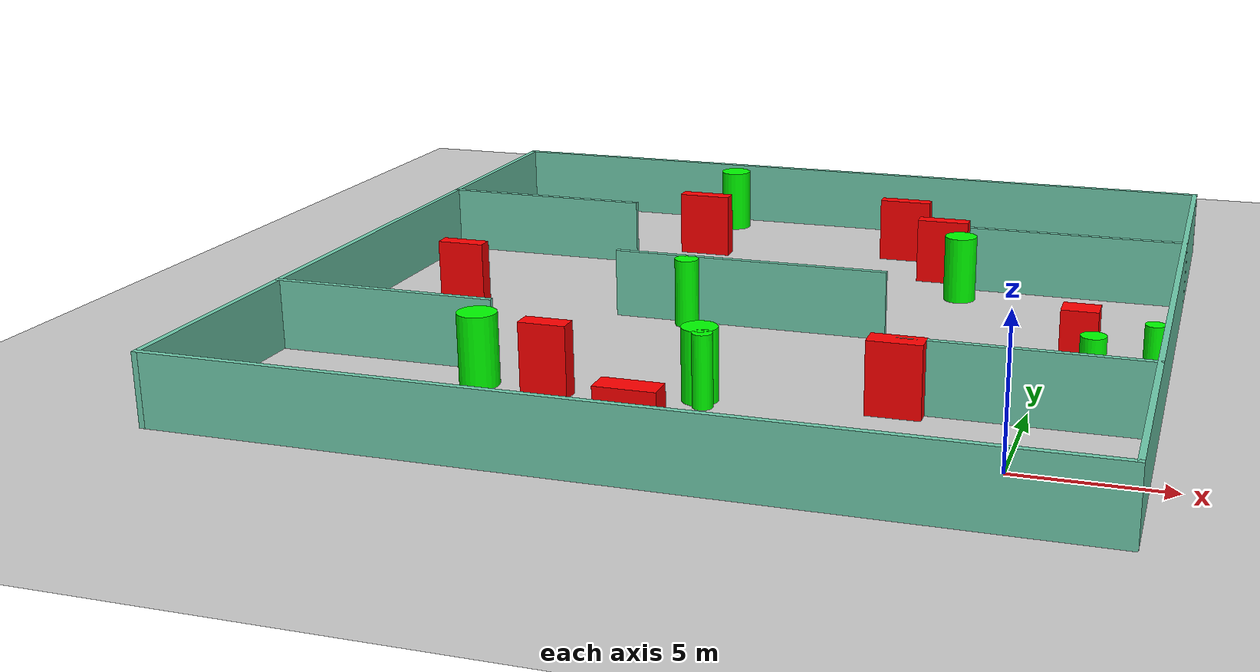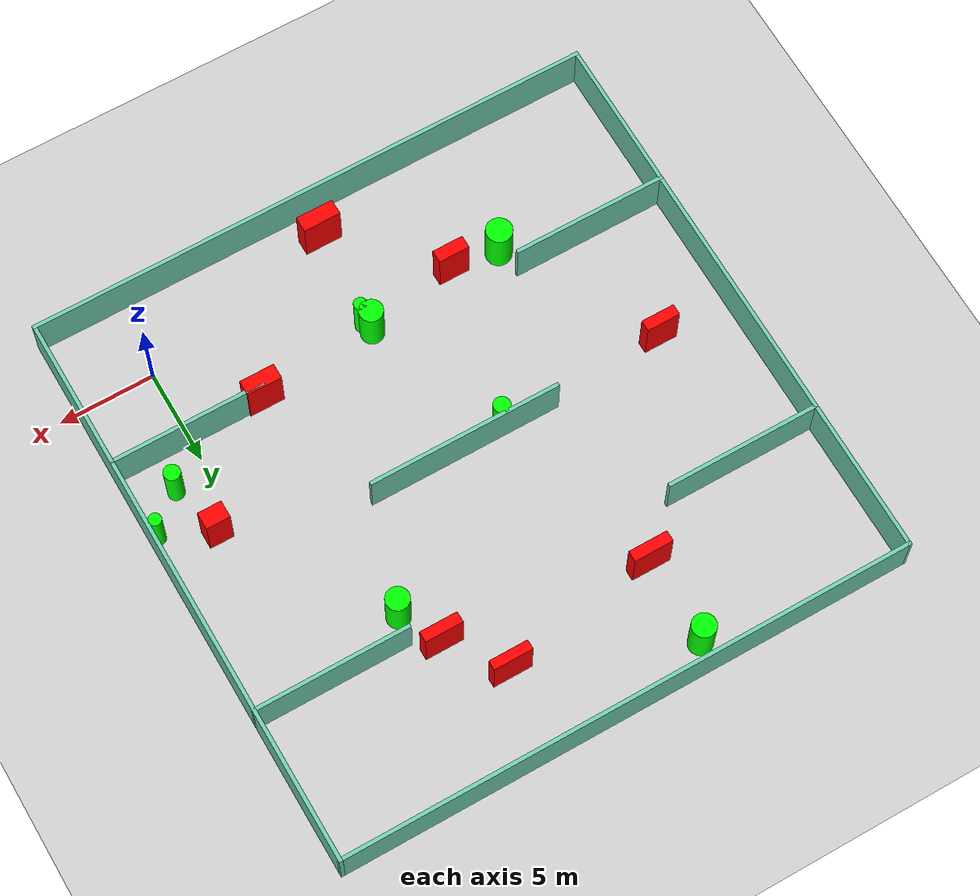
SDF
<sdf version="1.7">
 <world name="default">
  <light name="sun" type="directional">
   <pose>0 0 10 0 -0 0</pose>
   <diffuse>0.8 0.8 0.8 1</diffuse>
   <specular>0.2 0.2 0.2 1</specular>
   <attenuation>
    <range>1000</range>
    <constant>0.9</constant>
    <linear>0.01</linear>
    <quadratic>0.001</quadratic>
   </attenuation>
   <direction>-0.5 0.1 -0.9</direction>
   <spot><inner_angle>0</inner_angle><outer_angle>0</outer_angle><falloff>0</falloff></spot>
  </light>
  <model name="ground_plane">
   <static>1</static>
   <link name="link">
    <collision name="collision">
     <geometry><plane><normal>0 0 1</normal><size>100 100</size></plane></geometry>
     <surface>
      <contact><collide_bitmask>65535</collide_bitmask></contact>
      <friction><ode><mu>100</mu><mu2>50</mu2></ode></friction>
     </surface>
    </collision>
    <visual name="visual">
     <cast_shadows>0</cast_shadows>
     <geometry><plane><normal>0 0 1</normal><size>100 100</size></plane></geometry>
     <material>
      <script><uri>file://media/materials/scripts/gazebo.material</uri><name>Gazebo/Grey</name></script>
     </material>
    </visual>
   </link>
  </model>
  <gravity>0 0 -9.8</gravity>
  <magnetic_field>6e-06 2.3e-05 -4.2e-05</magnetic_field>
  <atmosphere type="adiabatic"/>
  <physics type="ode">
   <max_step_size>0.001</max_step_size>
   <real_time_factor>1</real_time_factor>
   <real_time_update_rate>1000</real_time_update_rate>
  </physics>
  <scene><ambient>0.4 0.4 0.4 1</ambient><background>0.7 0.7 0.7 1</background><shadows>1</shadows></scene>
  <spherical_coordinates>
   <surface_model>EARTH_WGS84</surface_model>
   <latitude_deg>0</latitude_deg>
   <longitude_deg>0</longitude_deg>
   <elevation>0</elevation>
   <heading_deg>0</heading_deg>
  </spherical_coordinates>
  <model name="my_base_walls">
   <link name="Wall_10">
    <collision name="Wall_10_Collision">
     <geometry><box><size>8.2 0.2 2.5</size></box></geometry>
     <pose>0 0 1.25 0 -0 0</pose>
    </collision>
    <visual name="Wall_10_Visual">
     <pose>0 0 1.25 0 -0 0</pose>
     <geometry><box><size>8.2 0.2 2.5</size></box></geometry>
     <material>
      <script><uri>file://media/materials/scripts/gazebo.material</uri><name>Gazebo/Grey</name></script>
      <ambient>0.435294 0.796078 0.67451 1</ambient>
     </material>
     <meta><layer>0</layer></meta>
    </visual>
    <pose>-11 -7 0 0 -0 0</pose>
   </link>
   <link name="Wall_12">
    <collision name="Wall_12_Collision">
     <geometry><box><size>8.2 0.2 2.5</size></box></geometry>
     <pose>0 0 1.25 0 -0 0</pose>
    </collision>
    <visual name="Wall_12_Visual">
     <pose>0 0 1.25 0 -0 0</pose>
     <geometry><box><size>8.2 0.2 2.5</size></box></geometry>
     <material>
      <script><uri>file://media/materials/scripts/gazebo.material</uri><name>Gazebo/Grey</name></script>
      <ambient>0.435294 0.796078 0.67451 1</ambient>
     </material>
     <meta><layer>0</layer></meta>
    </visual>
    <pose>-11 7 0 0 -0 0</pose>
   </link>
   <link name="Wall_14">
    <collision name="Wall_14_Collision">
     <geometry><box><size>8.2 0.2 2.5</size></box></geometry>
     <pose>0 0 1.25 0 -0 0</pose>
    </collision>
    <visual name="Wall_14_Visual">
     <pose>0 0 1.25 0 -0 0</pose>
     <geometry><box><size>8.2 0.2 2.5</size></box></geometry>
     <material>
      <script><uri>file://media/materials/scripts/gazebo.material</uri><name>Gazebo/Grey</name></script>
      <ambient>0.435294 0.796078 0.67451 1</ambient>
     </material>
     <meta><layer>0</layer></meta>
    </visual>
    <pose>11 7 0 0 -0 3.14159</pose>
   </link>
   <link name="Wall_16">
    <collision name="Wall_16_Collision">
     <geometry><box><size>10.2 0.2 2.5</size></box></geometry>
     <pose>0 0 1.25 0 -0 0</pose>
    </collision>
    <visual name="Wall_16_Visual">
     <pose>0 0 1.25 0 -0 0</pose>
     <geometry><box><size>10.2 0.2 2.5</size></box></geometry>
     <material>
      <script><uri>file://media/materials/scripts/gazebo.material</uri><name>Gazebo/Grey</name></script>
      <ambient>0.435294 0.796078 0.67451 1</ambient>
     </material>
     <meta><layer>0</layer></meta>
    </visual>
    <pose>0 0 0 0 -0 3.14159</pose>
   </link>
   <link name="Wall_2">
    <collision name="Wall_2_Collision">
     <geometry><box><size>30.2 0.2 2.5</size></box></geometry>
     <pose>0 0 1.25 0 -0 0</pose>
    </collision>
    <visual name="Wall_2_Visual">
     <pose>0 0 1.25 0 -0 0</pose>
     <geometry><box><size>30.2 0.2 2.5</size></box></geometry>
     <material>
      <script><uri>file://media/materials/scripts/gazebo.material</uri><name>Gazebo/Grey</name></script>
      <ambient>0.435294 0.796078 0.67451 1</ambient>
     </material>
     <meta><layer>0</layer></meta>
    </visual>
    <pose>0 -15 0 0 -0 3.14159</pose>
   </link>
   <link name="Wall_3">
    <collision name="Wall_3_Collision">
     <geometry><box><size>30.2 0.2 2.5</size></box></geometry>
     <pose>0 0 1.25 0 -0 0</pose>
    </collision>
    <visual name="Wall_3_Visual">
     <pose>0 0 1.25 0 -0 0</pose>
     <geometry><box><size>30.2 0.2 2.5</size></box></geometry>
     <material>
      <script><uri>file://media/materials/scripts/gazebo.material</uri><name>Gazebo/Grey</name></script>
      <ambient>0.435294 0.796078 0.67451 1</ambient>
     </material>
     <meta><layer>0</layer></meta>
    </visual>
    <pose>-15 0 0 0 -0 1.5708</pose>
   </link>
   <link name="Wall_4">
    <collision name="Wall_4_Collision">
     <geometry><box><size>30.2 0.2 2.5</size></box></geometry>
     <pose>0 0 1.25 0 -0 0</pose>
    </collision>
    <visual name="Wall_4_Visual">
     <pose>0 0 1.25 0 -0 0</pose>
     <geometry><box><size>30.2 0.2 2.5</size></box></geometry>
     <material>
      <script><uri>file://media/materials/scripts/gazebo.material</uri><name>Gazebo/Grey</name></script>
      <ambient>0.435294 0.796078 0.67451 1</ambient>
     </material>
     <meta><layer>0</layer></meta>
    </visual>
    <pose>0 15 0 0 -0 0</pose>
   </link>
   <link name="Wall_6">
    <collision name="Wall_6_Collision">
     <geometry><box><size>30.2 0.2 2.5</size></box></geometry>
     <pose>0 0 1.25 0 -0 0</pose>
    </collision>
    <visual name="Wall_6_Visual">
     <pose>0 0 1.25 0 -0 0</pose>
     <geometry><box><size>30.2 0.2 2.5</size></box></geometry>
     <material>
      <script><uri>file://media/materials/scripts/gazebo.material</uri><name>Gazebo/Grey</name></script>
      <ambient>0.435294 0.796078 0.67451 1</ambient>
     </material>
     <meta><layer>0</layer></meta>
    </visual>
    <pose>15 0 0 0 -0 1.5708</pose>
   </link>
   <link name="Wall_8">
    <collision name="Wall_8_Collision">
     <geometry><box><size>8.2 0.2 2.5</size></box></geometry>
     <pose>0 0 1.25 0 -0 0</pose>
    </collision>
    <visual name="Wall_8_Visual">
     <pose>0 0 1.25 0 -0 0</pose>
     <geometry><box><size>8.2 0.2 2.5</size></box></geometry>
     <material>
      <script><uri>file://media/materials/scripts/gazebo.material</uri><name>Gazebo/Grey</name></script>
      <ambient>0.435294 0.796078 0.67451 1</ambient>
     </material>
     <meta><layer>0</layer></meta>
    </visual>
    <pose>11 -7 0 0 -0 3.14159</pose>
   </link>
   <static>1</static>
   <pose>-11 11 0 0 -0 0</pose>
  </model>
  <model name="cylinder1">
   <static>1</static>
   <link name="link">
    <inertial>
     <mass>1</mass>
     <inertia><ixx>0.5</ixx><ixy>0</ixy><ixz>0</ixz><iyy>0.5</iyy><iyz>0</iyz><izz>1</izz></inertia>
    </inertial>
    <collision name="collision">
     <geometry><cylinder><radius>0.3407831578342312</radius><length>2.5</length></cylinder></geometry>
    </collision>
    <visual name="visual">
     <geometry><cylinder><radius>0.3407831578342312</radius><length>2.5</length></cylinder></geometry>
     <material>
      <ambient>0 1 0 1</ambient>
      <diffuse>0 1 0 1</diffuse>
      <specular>0.1 0.1 0.1 1</specular>
      <emissive>0 0 0 0</emissive>
     </material>
    </visual>
   </link>
   <pose>-10.024002713236008 2.6583297234380883 1.25 0 0 0</pose>
  </model>
  <model name="cylinder2">
   <static>1</static>
   <link name="link">
    <inertial>
     <mass>1</mass>
     <inertia><ixx>0.5</ixx><ixy>0</ixy><ixz>0</ixz><iyy>0.5</iyy><iyz>0</iyz><izz>1</izz></inertia>
    </inertial>
    <collision name="collision">
     <geometry><cylinder><radius>0.6797811547102879</radius><length>2.5</length></cylinder></geometry>
    </collision>
    <visual name="visual">
     <geometry><cylinder><radius>0.6797811547102879</radius><length>2.5</length></cylinder></geometry>
     <material>
      <ambient>0 1 0 1</ambient>
      <diffuse>0 1 0 1</diffuse>
      <specular>0.1 0.1 0.1 1</specular>
      <emissive>0 0 0 0</emissive>
     </material>
    </visual>
   </link>
   <pose>-17.75507057122416 2.571757505883303 1.25 0 0 0</pose>
  </model>
  <model name="cylinder3">
   <static>1</static>
   <link name="link">
    <inertial>
     <mass>1</mass>
     <inertia><ixx>0.5</ixx><ixy>0</ixy><ixz>0</ixz><iyy>0.5</iyy><iyz>0</iyz><izz>1</izz></inertia>
    </inertial>
    <collision name="collision">
     <geometry><cylinder><radius>0.6188521931914469</radius><length>2.5</length></cylinder></geometry>
    </collision>
    <visual name="visual">
     <geometry><cylinder><radius>0.6188521931914469</radius><length>2.5</length></cylinder></geometry>
     <material>
      <ambient>0 1 0 1</ambient>
      <diffuse>0 1 0 1</diffuse>
      <specular>0.1 0.1 0.1 1</specular>
      <emissive>0 0 0 0</emissive>
     </material>
    </visual>
   </link>
   <pose>-15.69648526041571 24.686716460016235 1.25 0 0 0</pose>
  </model>
  <model name="cylinder4">
   <static>1</static>
   <link name="link">
    <inertial>
     <mass>1</mass>
     <inertia><ixx>0.5</ixx><ixy>0</ixy><ixz>0</ixz><iyy>0.5</iyy><iyz>0</iyz><izz>1</izz></inertia>
    </inertial>
    <collision name="collision">
     <geometry><cylinder><radius>0.6104662178078668</radius><length>2.5</length></cylinder></geometry>
    </collision>
    <visual name="visual">
     <geometry><cylinder><radius>0.6104662178078668</radius><length>2.5</length></cylinder></geometry>
     <material>
      <ambient>0 1 0 1</ambient>
      <diffuse>0 1 0 1</diffuse>
      <specular>0.1 0.1 0.1 1</specular>
      <emissive>0 0 0 0</emissive>
     </material>
    </visual>
   </link>
   <pose>-10.296425997404395 3.235511063017073 1.25 0 0 0</pose>
  </model>
  <model name="cylinder5">
   <static>1</static>
   <link name="link">
    <inertial>
     <mass>1</mass>
     <inertia><ixx>0.5</ixx><ixy>0</ixy><ixz>0</ixz><iyy>0.5</iyy><iyz>0</iyz><izz>1</izz></inertia>
    </inertial>
    <collision name="collision">
     <geometry><cylinder><radius>0.33294884921666684</radius><length>2.5</length></cylinder></geometry>
    </collision>
    <visual name="visual">
     <geometry><cylinder><radius>0.33294884921666684</radius><length>2.5</length></cylinder></geometry>
     <material>
      <ambient>0 1 0 1</ambient>
      <diffuse>0 1 0 1</diffuse>
      <specular>0.1 0.1 0.1 1</specular>
      <emissive>0 0 0 0</emissive>
     </material>
    </visual>
   </link>
   <pose>3.6077327091481948 7.594776636435457 1.25 0 0 0</pose>
  </model>
  <model name="cylinder6">
   <static>1</static>
   <link name="link">
    <inertial>
     <mass>1</mass>
     <inertia><ixx>0.5</ixx><ixy>0</ixy><ixz>0</ixz><iyy>0.5</iyy><iyz>0</iyz><izz>1</izz></inertia>
    </inertial>
    <collision name="collision">
     <geometry><cylinder><radius>0.6067492196178421</radius><length>2.5</length></cylinder></geometry>
    </collision>
    <visual name="visual">
     <geometry><cylinder><radius>0.6067492196178421</radius><length>2.5</length></cylinder></geometry>
     <material>
      <ambient>0 1 0 1</ambient>
      <diffuse>0 1 0 1</diffuse>
      <specular>0.1 0.1 0.1 1</specular>
      <emissive>0 0 0 0</emissive>
     </material>
    </visual>
   </link>
   <pose>-4.216176821285664 16.58741898892169 1.25 0 0 0</pose>
  </model>
  <model name="cylinder7">
   <static>1</static>
   <link name="link">
    <inertial>
     <mass>1</mass>
     <inertia><ixx>0.5</ixx><ixy>0</ixy><ixz>0</ixz><iyy>0.5</iyy><iyz>0</iyz><izz>1</izz></inertia>
    </inertial>
    <collision name="collision">
     <geometry><cylinder><radius>0.4367052697248063</radius><length>2.5</length></cylinder></geometry>
    </collision>
    <visual name="visual">
     <geometry><cylinder><radius>0.4367052697248063</radius><length>2.5</length></cylinder></geometry>
     <material>
      <ambient>0 1 0 1</ambient>
      <diffuse>0 1 0 1</diffuse>
      <specular>0.1 0.1 0.1 1</specular>
      <emissive>0 0 0 0</emissive>
     </material>
    </visual>
   </link>
   <pose>-13.23415888202145 10.597957115335682 1.25 0 0 0</pose>
  </model>
  <model name="cylinder8">
   <static>1</static>
   <link name="link">
    <inertial>
     <mass>1</mass>
     <inertia><ixx>0.5</ixx><ixy>0</ixy><ixz>0</ixz><iyy>0.5</iyy><iyz>0</iyz><izz>1</izz></inertia>
    </inertial>
    <collision name="collision">
     <geometry><cylinder><radius>0.42406762559453864</radius><length>2.5</length></cylinder></geometry>
    </collision>
    <visual name="visual">
     <geometry><cylinder><radius>0.42406762559453864</radius><length>2.5</length></cylinder></geometry>
     <material>
      <ambient>0 1 0 1</ambient>
      <diffuse>0 1 0 1</diffuse>
      <specular>0.1 0.1 0.1 1</specular>
      <emissive>0 0 0 0</emissive>
     </material>
    </visual>
   </link>
   <pose>1.8232955925805392 5.899958499354861 1.25 0 0 0</pose>
  </model>
  <model name="box1">
   <static>1</static>
   <link name="link">
    <inertial>
     <mass>1</mass>
     <inertia><ixx>0.083</ixx><ixy>0</ixy><ixz>0</ixz><iyy>0.083</iyy><iyz>0</iyz><izz>0.083</izz></inertia>
    </inertial>
    <collision name="collision">
     <geometry><box><size>1.8291014184688876 0.8133501763128266 2.5</size></box></geometry>
    </collision>
    <visual name="visual">
     <geometry><box><size>1.8291014184688876 0.8133501763128266 2.5</size></box></geometry>
     <material>
      <ambient>1 0 0 1</ambient>
      <diffuse>1 0 0 1</diffuse>
      <specular>0.1 0.1 0.1 1</specular>
      <emissive>0 0 0 0</emissive>
     </material>
    </visual>
    <sensor name="my_contact" type="contact">
     <contact><collision>box_collision</collision><topic>__default_topic__</topic></contact>
    </sensor>
   </link>
   <pose>-4.013048340119388 3.7904497467983695 1.25 0 0 0</pose>
  </model>
  <model name="box2">
   <static>1</static>
   <link name="link">
    <inertial>
     <mass>1</mass>
     <inertia><ixx>0.083</ixx><ixy>0</ixy><ixz>0</ixz><iyy>0.083</iyy><iyz>0</iyz><izz>0.083</izz></inertia>
    </inertial>
    <collision name="collision">
     <geometry><box><size>1.6318295173642918 0.6776338641841965 2.5</size></box></geometry>
    </collision>
    <visual name="visual">
     <geometry><box><size>1.6318295173642918 0.6776338641841965 2.5</size></box></geometry>
     <material>
      <ambient>1 0 0 1</ambient>
      <diffuse>1 0 0 1</diffuse>
      <specular>0.1 0.1 0.1 1</specular>
      <emissive>0 0 0 0</emissive>
     </material>
    </visual>
    <sensor name="my_contact" type="contact">
     <contact><collision>box_collision</collision><topic>__default_topic__</topic></contact>
    </sensor>
   </link>
   <pose>-15.223843985443763 2.2992318854145166 1.25 0 0 0</pose>
  </model>
  <model name="box3">
   <static>1</static>
   <link name="link">
    <inertial>
     <mass>1</mass>
     <inertia><ixx>0.083</ixx><ixy>0</ixy><ixz>0</ixz><iyy>0.083</iyy><iyz>0</iyz><izz>0.083</izz></inertia>
    </inertial>
    <collision name="collision">
     <geometry><box><size>2.049269048751304 0.5025108599821879 2.5</size></box></geometry>
    </collision>
    <visual name="visual">
     <geometry><box><size>2.049269048751304 0.5025108599821879 2.5</size></box></geometry>
     <material>
      <ambient>1 0 0 1</ambient>
      <diffuse>1 0 0 1</diffuse>
      <specular>0.1 0.1 0.1 1</specular>
      <emissive>0 0 0 0</emissive>
     </material>
    </visual>
    <sensor name="my_contact" type="contact">
     <contact><collision>box_collision</collision><topic>__default_topic__</topic></contact>
    </sensor>
   </link>
   <pose>-7.345938978616347 21.522427389587637 1.25 0 0 0</pose>
  </model>
  <model name="box4">
   <static>1</static>
   <link name="link">
    <inertial>
     <mass>1</mass>
     <inertia><ixx>0.083</ixx><ixy>0</ixy><ixz>0</ixz><iyy>0.083</iyy><iyz>0</iyz><izz>0.083</izz></inertia>
    </inertial>
    <collision name="collision">
     <geometry><box><size>1.7671347721805457 0.5820355515052605 2.5</size></box></geometry>
    </collision>
    <visual name="visual">
     <geometry><box><size>1.7671347721805457 0.5820355515052605 2.5</size></box></geometry>
     <material>
      <ambient>1 0 0 1</ambient>
      <diffuse>1 0 0 1</diffuse>
      <specular>0.1 0.1 0.1 1</specular>
      <emissive>0 0 0 0</emissive>
     </material>
    </visual>
    <sensor name="my_contact" type="contact">
     <contact><collision>box_collision</collision><topic>__default_topic__</topic></contact>
    </sensor>
   </link>
   <pose>-22.06748758074664 10.45213552056383 1.25 0 0 0</pose>
  </model>
  <model name="box5">
   <static>1</static>
   <link name="link">
    <inertial>
     <mass>1</mass>
     <inertia><ixx>0.083</ixx><ixy>0</ixy><ixz>0</ixz><iyy>0.083</iyy><iyz>0</iyz><izz>0.083</izz></inertia>
    </inertial>
    <collision name="collision">
     <geometry><box><size>1.9827620904051804 0.5703090070387442 2.5</size></box></geometry>
    </collision>
    <visual name="visual">
     <geometry><box><size>1.9827620904051804 0.5703090070387442 2.5</size></box></geometry>
     <material>
      <ambient>1 0 0 1</ambient>
      <diffuse>1 0 0 1</diffuse>
      <specular>0.1 0.1 0.1 1</specular>
      <emissive>0 0 0 0</emissive>
     </material>
    </visual>
    <sensor name="my_contact" type="contact">
     <contact><collision>box_collision</collision><topic>__default_topic__</topic></contact>
    </sensor>
   </link>
   <pose>-5.276512063913284 18.777318867565068 1.25 0 0 0</pose>
  </model>
  <model name="box6">
   <static>1</static>
   <link name="link">
    <inertial>
     <mass>1</mass>
     <inertia><ixx>0.083</ixx><ixy>0</ixy><ixz>0</ixz><iyy>0.083</iyy><iyz>0</iyz><izz>0.083</izz></inertia>
    </inertial>
    <collision name="collision">
     <geometry><box><size>1.967802240493756 0.8309055677132258 2.5</size></box></geometry>
    </collision>
    <visual name="visual">
     <geometry><box><size>1.967802240493756 0.8309055677132258 2.5</size></box></geometry>
     <material>
      <ambient>1 0 0 1</ambient>
      <diffuse>1 0 0 1</diffuse>
      <specular>0.1 0.1 0.1 1</specular>
      <emissive>0 0 0 0</emissive>
     </material>
    </visual>
    <sensor name="my_contact" type="contact">
     <contact><collision>box_collision</collision><topic>__default_topic__</topic></contact>
    </sensor>
   </link>
   <pose>-10.559888200174193 -2.474121560309087 1.25 0 0 0</pose>
  </model>
  <model name="box7">
   <static>1</static>
   <link name="link">
    <inertial>
     <mass>1</mass>
     <inertia><ixx>0.083</ixx><ixy>0</ixy><ixz>0</ixz><iyy>0.083</iyy><iyz>0</iyz><izz>0.083</izz></inertia>
    </inertial>
    <collision name="collision">
     <geometry><box><size>1.2546043098017852 0.9210108409181338 2.5</size></box></geometry>
    </collision>
    <visual name="visual">
     <geometry><box><size>1.2546043098017852 0.9210108409181338 2.5</size></box></geometry>
     <material>
      <ambient>1 0 0 1</ambient>
      <diffuse>1 0 0 1</diffuse>
      <specular>0.1 0.1 0.1 1</specular>
      <emissive>0 0 0 0</emissive>
     </material>
    </visual>
    <sensor name="my_contact" type="contact">
     <contact><collision>box_collision</collision><topic>__default_topic__</topic></contact>
    </sensor>
   </link>
   <pose>1.1342470385055812 8.761956535811418 1.25 0 0 0</pose>
  </model>
  <model name="box8">
   <static>1</static>
   <link name="link">
    <inertial>
     <mass>1</mass>
     <inertia><ixx>0.083</ixx><ixy>0</ixy><ixz>0</ixz><iyy>0.083</iyy><iyz>0</iyz><izz>0.083</izz></inertia>
    </inertial>
    <collision name="collision">
     <geometry><box><size>2.0678787726757144 0.5788260837904966 2.5</size></box></geometry>
    </collision>
    <visual name="visual">
     <geometry><box><size>2.0678787726757144 0.5788260837904966 2.5</size></box></geometry>
     <material>
      <ambient>1 0 0 1</ambient>
      <diffuse>1 0 0 1</diffuse>
      <specular>0.1 0.1 0.1 1</specular>
      <emissive>0 0 0 0</emissive>
     </material>
    </visual>
    <sensor name="my_contact" type="contact">
     <contact><collision>box_collision</collision><topic>__default_topic__</topic></contact>
    </sensor>
   </link>
   <pose>-15.605287340141079 20.177194187747297 1.25 0 0 0</pose>
  </model>
 </world>
</sdf>
